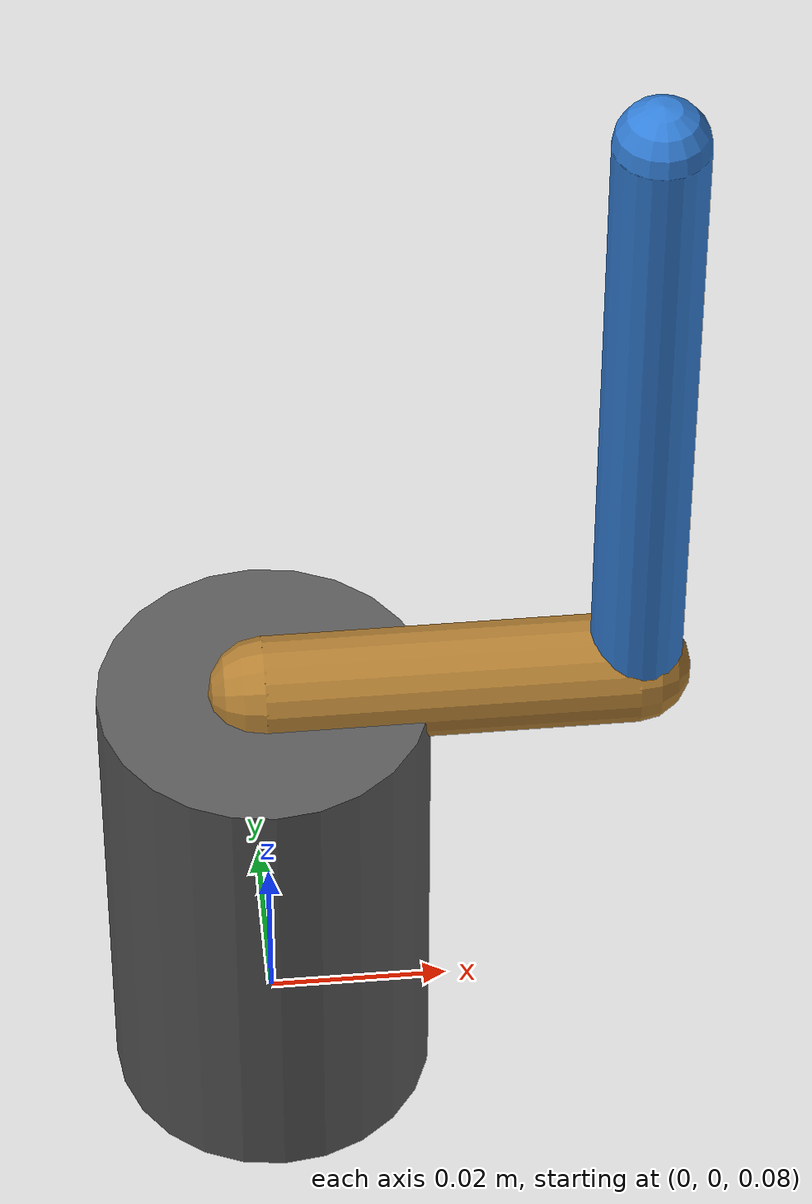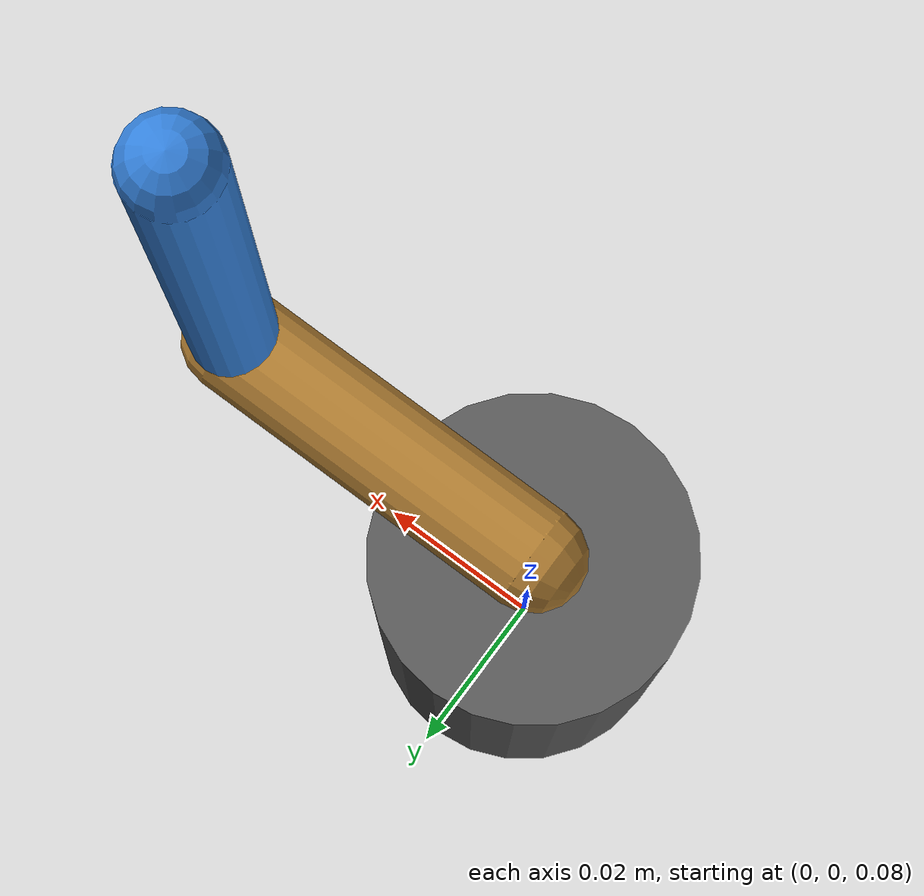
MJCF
<mujoco model="furuta_pendulum">

  <contact>
    <exclude body1="base" body2="arm"/>
    <exclude body1="arm" body2="rod"/>
    <exclude body1="base" body2="rod"/>
  </contact>

  <visual>
    <headlight diffuse="0.6 0.6 0.6" ambient="0.3 0.3 0.3" specular="0.1 0.1 0.1"/>
    <rgba haze="0.15 0.25 0.35 1"/>
  </visual>

  <worldbody>
    <light pos="0 0 1.5" dir="0 0 -1"  diffuse="0.8 0.8 0.8"/>
    <light pos="0.3 0.3 0.8" dir="-1 -1 -1" diffuse="0.4 0.4 0.4"/>

    <!-- Motor body.  Top face of cylinder is at world z = 0.10 + 0.030 = 0.130 m -->
    <body name="base" pos="0 0 0.10">
      <geom type="cylinder" size="0.018 0.030" mass="0.092" rgba="0.35 0.35 0.35 1"/>

      <!-- Arm body origin placed at the top of the motor (the shaft) -->
      <body name="arm" pos="0 0 0.030">
        <!-- Shoulder: arm sweeps the horizontal plane (rotation about Z) -->
        <joint name="shoulder" pos="0 0 0" axis="0 0 1"
               damping="0.00329" limited="true" range="-120 120"
               solreflimit="0.005 1"/>
        <!-- Arm: 40 mm from shoulder pivot to elbow pivot, measured hardware -->
        <geom type="capsule" fromto="0 0 0  0.040 0 0"
              size="0.006" mass="0.030" rgba="0.7 0.5 0.2 1"/>

        <!-- Rod body origin at the elbow pivot (tip of arm) -->
        <body name="rod" pos="0.040 0 0">
          <!-- Elbow: pendulum swings in the vertical plane containing the arm -->
          <!-- qpos=0 is UPRIGHT (+Z); qpos=+/-pi is HANGING (-Z)            -->
          <joint name="elbow" pos="0 0 0" axis="1 0 0" ref="0"/>
          <!-- Rod: 75 mm, pointing +Z at qpos=0 (upright), measured hardware -->
          <geom type="capsule" fromto="0 0 0  0 0 0.075"
                size="0.005" mass="0.025" rgba="0.2 0.5 0.85 1"/>
        </body>
      </body>
    </body>
  </worldbody>

  <actuator>
    <!-- u in [-1,1] -> shoulder torque in [-0.050, 0.050] N*m (Nidec 24H404H160 at 12V) -->
    <!-- sim_balance_env.py reconfigures this as a velocity servo at runtime              -->
    <motor name="shoulder_motor" joint="shoulder" gear="0.050" ctrlrange="-1 1"/>
  </actuator>

</mujoco>
